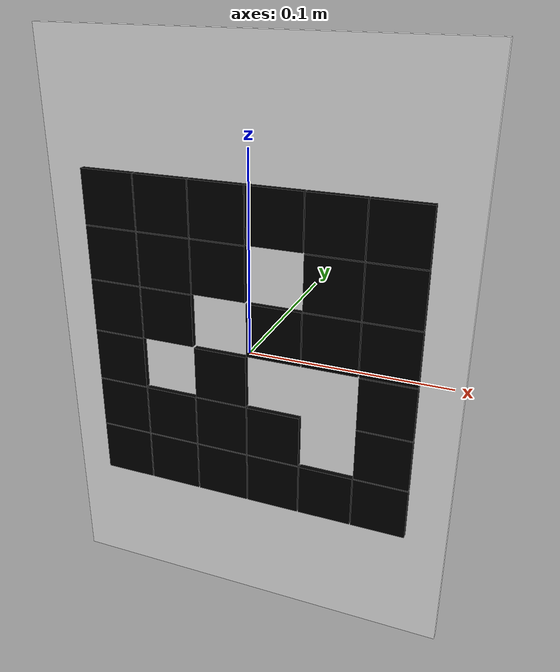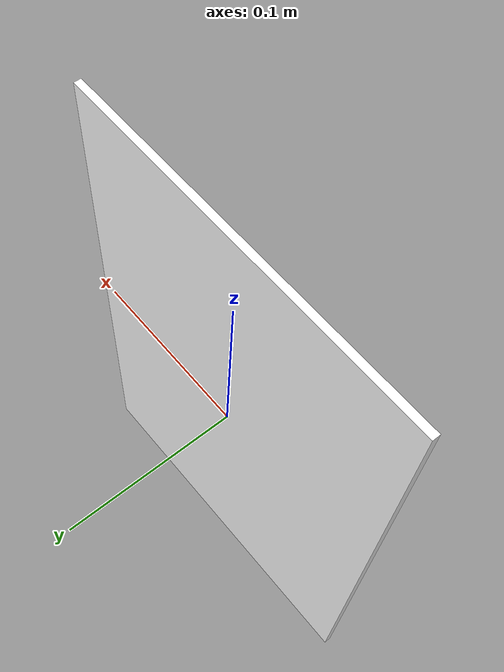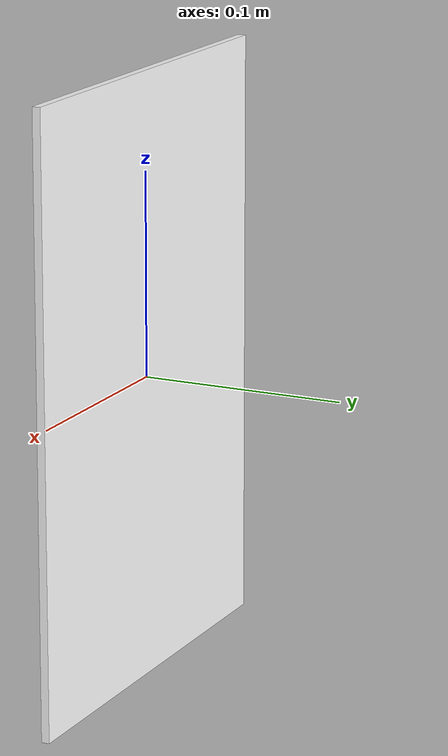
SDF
<?xml version="1.0" ?>
<sdf version="1.9">
  <model name="a4_aruco_marker_014">
    <static>true</static>
    <link name="board_link">

      <visual name="a4_white_sheet">
        <pose>0 0 0 0 0 0</pose>
        <geometry>
          <box>
            <size>0.210000 0.004 0.297000</size>
          </box>
        </geometry>
        <material>
          <ambient>1 1 1 1</ambient>
          <diffuse>1 1 1 1</diffuse>
        </material>
      </visual>

        <visual name="black_cell_0_0">
          <pose>-0.070833 -0.004000 0.070833 0 0 0</pose>
          <geometry>
            <box>
              <size>0.027767 0.003 0.027767</size>
            </box>
          </geometry>
          <material>
            <ambient>0 0 0 1</ambient>
            <diffuse>0 0 0 1</diffuse>
          </material>
        </visual>

        <visual name="black_cell_0_1">
          <pose>-0.042500 -0.004000 0.070833 0 0 0</pose>
          <geometry>
            <box>
              <size>0.027767 0.003 0.027767</size>
            </box>
          </geometry>
          <material>
            <ambient>0 0 0 1</ambient>
            <diffuse>0 0 0 1</diffuse>
          </material>
        </visual>

        <visual name="black_cell_0_2">
          <pose>-0.014167 -0.004000 0.070833 0 0 0</pose>
          <geometry>
            <box>
              <size>0.027767 0.003 0.027767</size>
            </box>
          </geometry>
          <material>
            <ambient>0 0 0 1</ambient>
            <diffuse>0 0 0 1</diffuse>
          </material>
        </visual>

        <visual name="black_cell_0_3">
          <pose>0.014167 -0.004000 0.070833 0 0 0</pose>
          <geometry>
            <box>
              <size>0.027767 0.003 0.027767</size>
            </box>
          </geometry>
          <material>
            <ambient>0 0 0 1</ambient>
            <diffuse>0 0 0 1</diffuse>
          </material>
        </visual>

        <visual name="black_cell_0_4">
          <pose>0.042500 -0.004000 0.070833 0 0 0</pose>
          <geometry>
            <box>
              <size>0.027767 0.003 0.027767</size>
            </box>
          </geometry>
          <material>
            <ambient>0 0 0 1</ambient>
            <diffuse>0 0 0 1</diffuse>
          </material>
        </visual>

        <visual name="black_cell_0_5">
          <pose>0.070833 -0.004000 0.070833 0 0 0</pose>
          <geometry>
            <box>
              <size>0.027767 0.003 0.027767</size>
            </box>
          </geometry>
          <material>
            <ambient>0 0 0 1</ambient>
            <diffuse>0 0 0 1</diffuse>
          </material>
        </visual>

        <visual name="black_cell_1_0">
          <pose>-0.070833 -0.004000 0.042500 0 0 0</pose>
          <geometry>
            <box>
              <size>0.027767 0.003 0.027767</size>
            </box>
          </geometry>
          <material>
            <ambient>0 0 0 1</ambient>
            <diffuse>0 0 0 1</diffuse>
          </material>
        </visual>

        <visual name="black_cell_1_1">
          <pose>-0.042500 -0.004000 0.042500 0 0 0</pose>
          <geometry>
            <box>
              <size>0.027767 0.003 0.027767</size>
            </box>
          </geometry>
          <material>
            <ambient>0 0 0 1</ambient>
            <diffuse>0 0 0 1</diffuse>
          </material>
        </visual>

        <visual name="black_cell_1_2">
          <pose>-0.014167 -0.004000 0.042500 0 0 0</pose>
          <geometry>
            <box>
              <size>0.027767 0.003 0.027767</size>
            </box>
          </geometry>
          <material>
            <ambient>0 0 0 1</ambient>
            <diffuse>0 0 0 1</diffuse>
          </material>
        </visual>

        <visual name="black_cell_1_4">
          <pose>0.042500 -0.004000 0.042500 0 0 0</pose>
          <geometry>
            <box>
              <size>0.027767 0.003 0.027767</size>
            </box>
          </geometry>
          <material>
            <ambient>0 0 0 1</ambient>
            <diffuse>0 0 0 1</diffuse>
          </material>
        </visual>

        <visual name="black_cell_1_5">
          <pose>0.070833 -0.004000 0.042500 0 0 0</pose>
          <geometry>
            <box>
              <size>0.027767 0.003 0.027767</size>
            </box>
          </geometry>
          <material>
            <ambient>0 0 0 1</ambient>
            <diffuse>0 0 0 1</diffuse>
          </material>
        </visual>

        <visual name="black_cell_2_0">
          <pose>-0.070833 -0.004000 0.014167 0 0 0</pose>
          <geometry>
            <box>
              <size>0.027767 0.003 0.027767</size>
            </box>
          </geometry>
          <material>
            <ambient>0 0 0 1</ambient>
            <diffuse>0 0 0 1</diffuse>
          </material>
        </visual>

        <visual name="black_cell_2_1">
          <pose>-0.042500 -0.004000 0.014167 0 0 0</pose>
          <geometry>
            <box>
              <size>0.027767 0.003 0.027767</size>
            </box>
          </geometry>
          <material>
            <ambient>0 0 0 1</ambient>
            <diffuse>0 0 0 1</diffuse>
          </material>
        </visual>

        <visual name="black_cell_2_3">
          <pose>0.014167 -0.004000 0.014167 0 0 0</pose>
          <geometry>
            <box>
              <size>0.027767 0.003 0.027767</size>
            </box>
          </geometry>
          <material>
            <ambient>0 0 0 1</ambient>
            <diffuse>0 0 0 1</diffuse>
          </material>
        </visual>

        <visual name="black_cell_2_4">
          <pose>0.042500 -0.004000 0.014167 0 0 0</pose>
          <geometry>
            <box>
              <size>0.027767 0.003 0.027767</size>
            </box>
          </geometry>
          <material>
            <ambient>0 0 0 1</ambient>
            <diffuse>0 0 0 1</diffuse>
          </material>
        </visual>

        <visual name="black_cell_2_5">
          <pose>0.070833 -0.004000 0.014167 0 0 0</pose>
          <geometry>
            <box>
              <size>0.027767 0.003 0.027767</size>
            </box>
          </geometry>
          <material>
            <ambient>0 0 0 1</ambient>
            <diffuse>0 0 0 1</diffuse>
          </material>
        </visual>

        <visual name="black_cell_3_0">
          <pose>-0.070833 -0.004000 -0.014167 0 0 0</pose>
          <geometry>
            <box>
              <size>0.027767 0.003 0.027767</size>
            </box>
          </geometry>
          <material>
            <ambient>0 0 0 1</ambient>
            <diffuse>0 0 0 1</diffuse>
          </material>
        </visual>

        <visual name="black_cell_3_2">
          <pose>-0.014167 -0.004000 -0.014167 0 0 0</pose>
          <geometry>
            <box>
              <size>0.027767 0.003 0.027767</size>
            </box>
          </geometry>
          <material>
            <ambient>0 0 0 1</ambient>
            <diffuse>0 0 0 1</diffuse>
          </material>
        </visual>

        <visual name="black_cell_3_5">
          <pose>0.070833 -0.004000 -0.014167 0 0 0</pose>
          <geometry>
            <box>
              <size>0.027767 0.003 0.027767</size>
            </box>
          </geometry>
          <material>
            <ambient>0 0 0 1</ambient>
            <diffuse>0 0 0 1</diffuse>
          </material>
        </visual>

        <visual name="black_cell_4_0">
          <pose>-0.070833 -0.004000 -0.042500 0 0 0</pose>
          <geometry>
            <box>
              <size>0.027767 0.003 0.027767</size>
            </box>
          </geometry>
          <material>
            <ambient>0 0 0 1</ambient>
            <diffuse>0 0 0 1</diffuse>
          </material>
        </visual>

        <visual name="black_cell_4_1">
          <pose>-0.042500 -0.004000 -0.042500 0 0 0</pose>
          <geometry>
            <box>
              <size>0.027767 0.003 0.027767</size>
            </box>
          </geometry>
          <material>
            <ambient>0 0 0 1</ambient>
            <diffuse>0 0 0 1</diffuse>
          </material>
        </visual>

        <visual name="black_cell_4_2">
          <pose>-0.014167 -0.004000 -0.042500 0 0 0</pose>
          <geometry>
            <box>
              <size>0.027767 0.003 0.027767</size>
            </box>
          </geometry>
          <material>
            <ambient>0 0 0 1</ambient>
            <diffuse>0 0 0 1</diffuse>
          </material>
        </visual>

        <visual name="black_cell_4_3">
          <pose>0.014167 -0.004000 -0.042500 0 0 0</pose>
          <geometry>
            <box>
              <size>0.027767 0.003 0.027767</size>
            </box>
          </geometry>
          <material>
            <ambient>0 0 0 1</ambient>
            <diffuse>0 0 0 1</diffuse>
          </material>
        </visual>

        <visual name="black_cell_4_5">
          <pose>0.070833 -0.004000 -0.042500 0 0 0</pose>
          <geometry>
            <box>
              <size>0.027767 0.003 0.027767</size>
            </box>
          </geometry>
          <material>
            <ambient>0 0 0 1</ambient>
            <diffuse>0 0 0 1</diffuse>
          </material>
        </visual>

        <visual name="black_cell_5_0">
          <pose>-0.070833 -0.004000 -0.070833 0 0 0</pose>
          <geometry>
            <box>
              <size>0.027767 0.003 0.027767</size>
            </box>
          </geometry>
          <material>
            <ambient>0 0 0 1</ambient>
            <diffuse>0 0 0 1</diffuse>
          </material>
        </visual>

        <visual name="black_cell_5_1">
          <pose>-0.042500 -0.004000 -0.070833 0 0 0</pose>
          <geometry>
            <box>
              <size>0.027767 0.003 0.027767</size>
            </box>
          </geometry>
          <material>
            <ambient>0 0 0 1</ambient>
            <diffuse>0 0 0 1</diffuse>
          </material>
        </visual>

        <visual name="black_cell_5_2">
          <pose>-0.014167 -0.004000 -0.070833 0 0 0</pose>
          <geometry>
            <box>
              <size>0.027767 0.003 0.027767</size>
            </box>
          </geometry>
          <material>
            <ambient>0 0 0 1</ambient>
            <diffuse>0 0 0 1</diffuse>
          </material>
        </visual>

        <visual name="black_cell_5_3">
          <pose>0.014167 -0.004000 -0.070833 0 0 0</pose>
          <geometry>
            <box>
              <size>0.027767 0.003 0.027767</size>
            </box>
          </geometry>
          <material>
            <ambient>0 0 0 1</ambient>
            <diffuse>0 0 0 1</diffuse>
          </material>
        </visual>

        <visual name="black_cell_5_4">
          <pose>0.042500 -0.004000 -0.070833 0 0 0</pose>
          <geometry>
            <box>
              <size>0.027767 0.003 0.027767</size>
            </box>
          </geometry>
          <material>
            <ambient>0 0 0 1</ambient>
            <diffuse>0 0 0 1</diffuse>
          </material>
        </visual>

        <visual name="black_cell_5_5">
          <pose>0.070833 -0.004000 -0.070833 0 0 0</pose>
          <geometry>
            <box>
              <size>0.027767 0.003 0.027767</size>
            </box>
          </geometry>
          <material>
            <ambient>0 0 0 1</ambient>
            <diffuse>0 0 0 1</diffuse>
          </material>
        </visual>

    </link>
  </model>
</sdf>
